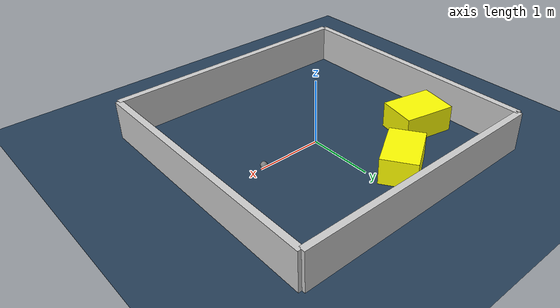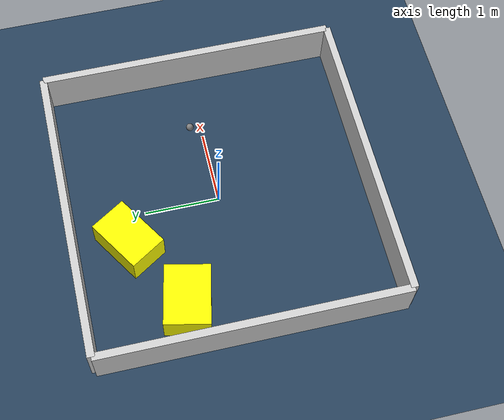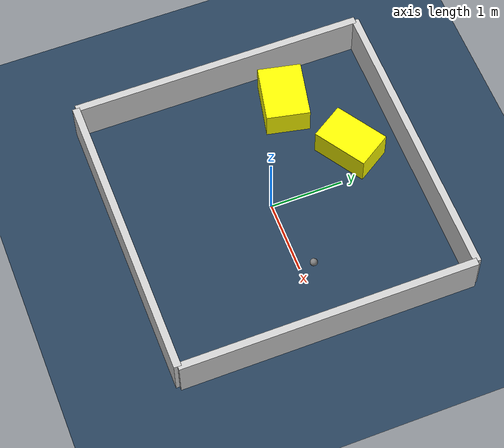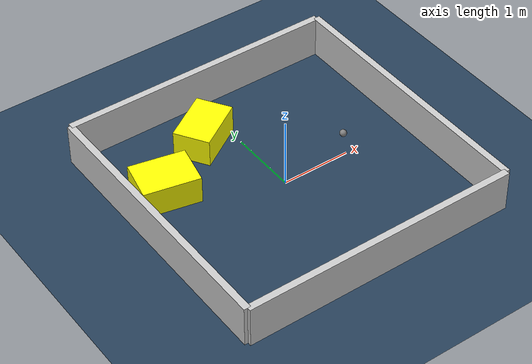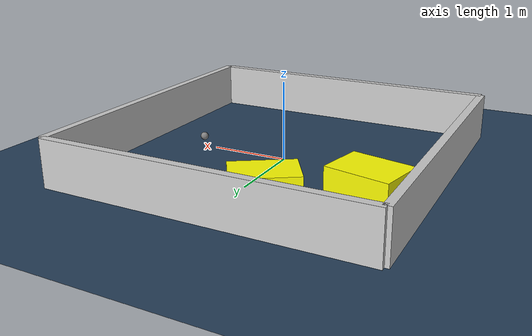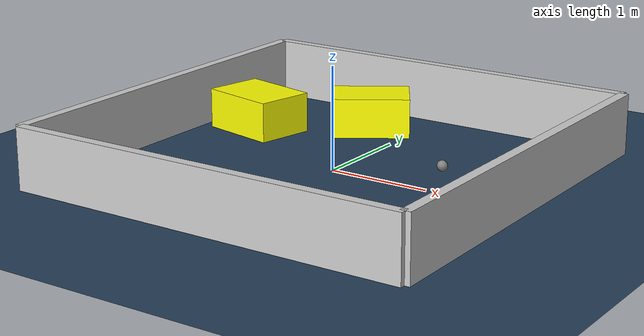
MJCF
<?xml version="1.0" ?>
<mujoco model="generated_environment">
  <option timestep="0.01" integrator="RK4" cone="elliptic"/>
  <default>
    <geom density="1"/>
  </default>
  <asset>
    <texture builtin="gradient" height="3072" rgb1="0.3 0.5 0.7" rgb2="0 0 0" type="skybox" width="512"/>
    <texture builtin="checker" height="300" mark="edge" markrgb="0.8 0.8 0.8" name="groundplane" rgb1="0.2 0.3 0.4" rgb2="0.1 0.2 0.3" type="2d" width="300"/>
    <material name="groundplane" reflectance="0.2" texrepeat="5 5" texture="groundplane" texuniform="true"/>
    <material name="robot" rgba="0.0 1.0 0.0 1"/>
  </asset>
  <worldbody>
    <light dir="0 0 -1" directional="true" pos="0 0 1.5"/>
    <geom condim="4" friction="1.0 0.005 0.001" material="groundplane" name="floor" size="0 0 0.05" type="plane"/>
    <body name="walls">
      <geom name="wall_1" condim="4" pos="-2.0 0.0 0.3" rgba="0.800000011920929 0.800000011920929 0.800000011920929 1.0" size="0.05 2.0 0.3" type="box"/>
      <geom name="wall_2" condim="4" pos="2.0 0.0 0.3" rgba="0.800000011920929 0.800000011920929 0.800000011920929 1.0" size="0.05 2.0 0.3" type="box"/>
      <geom name="wall_3" condim="4" pos="0.0 -2.0 0.3" rgba="0.800000011920929 0.800000011920929 0.800000011920929 1.0" size="2.0 0.05 0.3" type="box"/>
      <geom name="wall_4" condim="4" pos="0.0 2.0 0.3" rgba="0.800000011920929 0.800000011920929 0.800000011920929 1.0" size="2.0 0.05 0.3" type="box"/>
    </body>
    <body name="robot">
      <joint name="joint_x" type="slide" pos="0 0 0" axis="1 0 0"/>
      <joint name="joint_y" type="slide" pos="0 0 0" axis="0 1 0"/>
      <geom name="robot" type="sphere" pos="1.073578309831043 0.16382019543609116 0.2" size="0.05" mass="5." friction="1.0 0.005 0.0001" condim="4"/>
      <site name="sensor_ball"/>
    </body>
    <body name="obstacle_1_movable">
      <geom name="obstacle_1_movable" condim="4" pos="-0.4139726993121997 1.286199155751817 0.2" euler="0 0 212.43987482437223" friction="1.0 0.005 0.001" rgba="1 1 0 1" size="0.3907123348231807 0.26149579264514855 0.2" type="box" mass="0.1"/>
      <joint type="free"/>
    </body>
    <body name="obstacle_2_movable">
      <geom name="obstacle_2_movable" condim="4" pos="-1.3920211920387933 0.7168523656440366 0.2" euler="0 0 348.00020595976116" friction="1.0 0.005 0.001" rgba="1 1 0 1" size="0.3979637796184827 0.2963688783580366 0.2" type="box" mass="0.1"/>
      <joint type="free"/>
    </body>
  </worldbody>
  <actuator>
    <motor name="actuator_x" joint="joint_x" gear="1" ctrlrange="-1 1"/>
    <motor name="actuator_y" joint="joint_y" gear="1" ctrlrange="-1 1"/>
  </actuator>
</mujoco>
